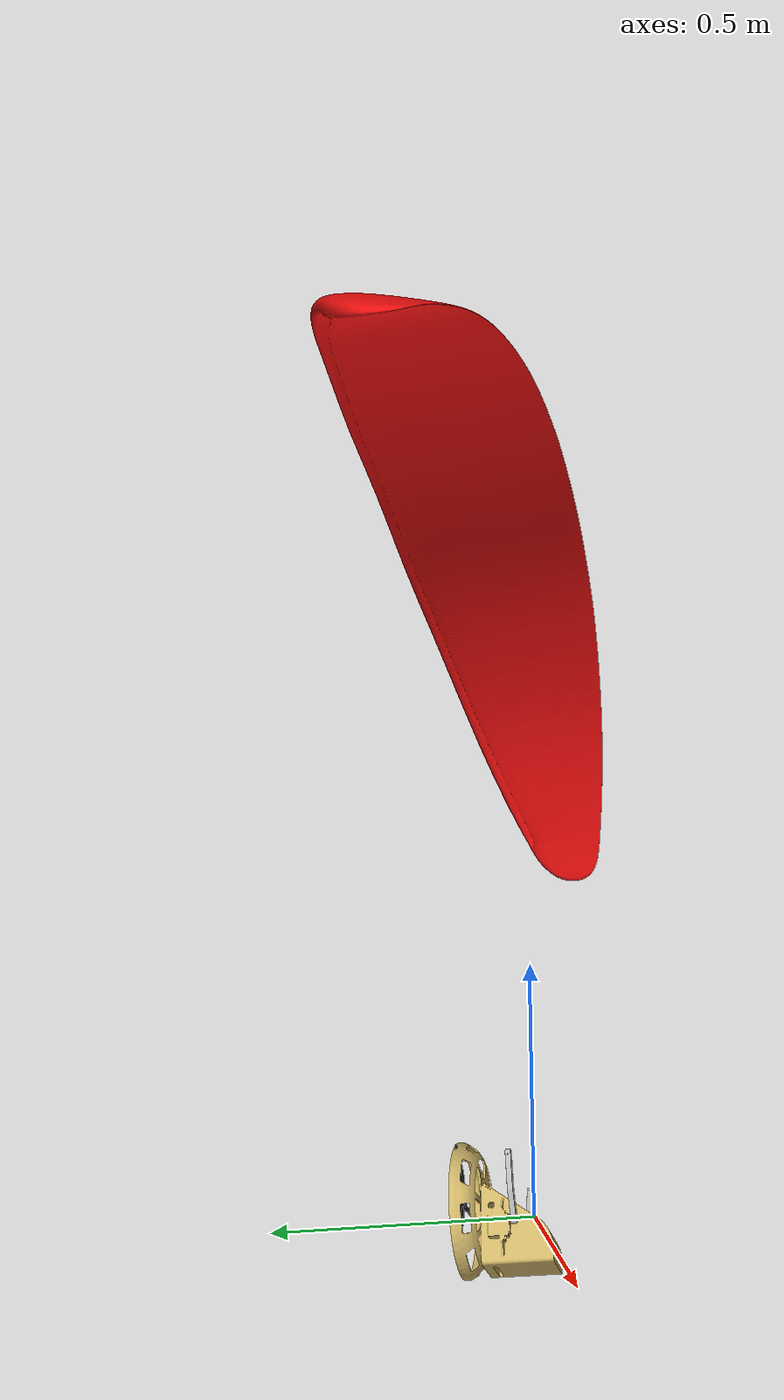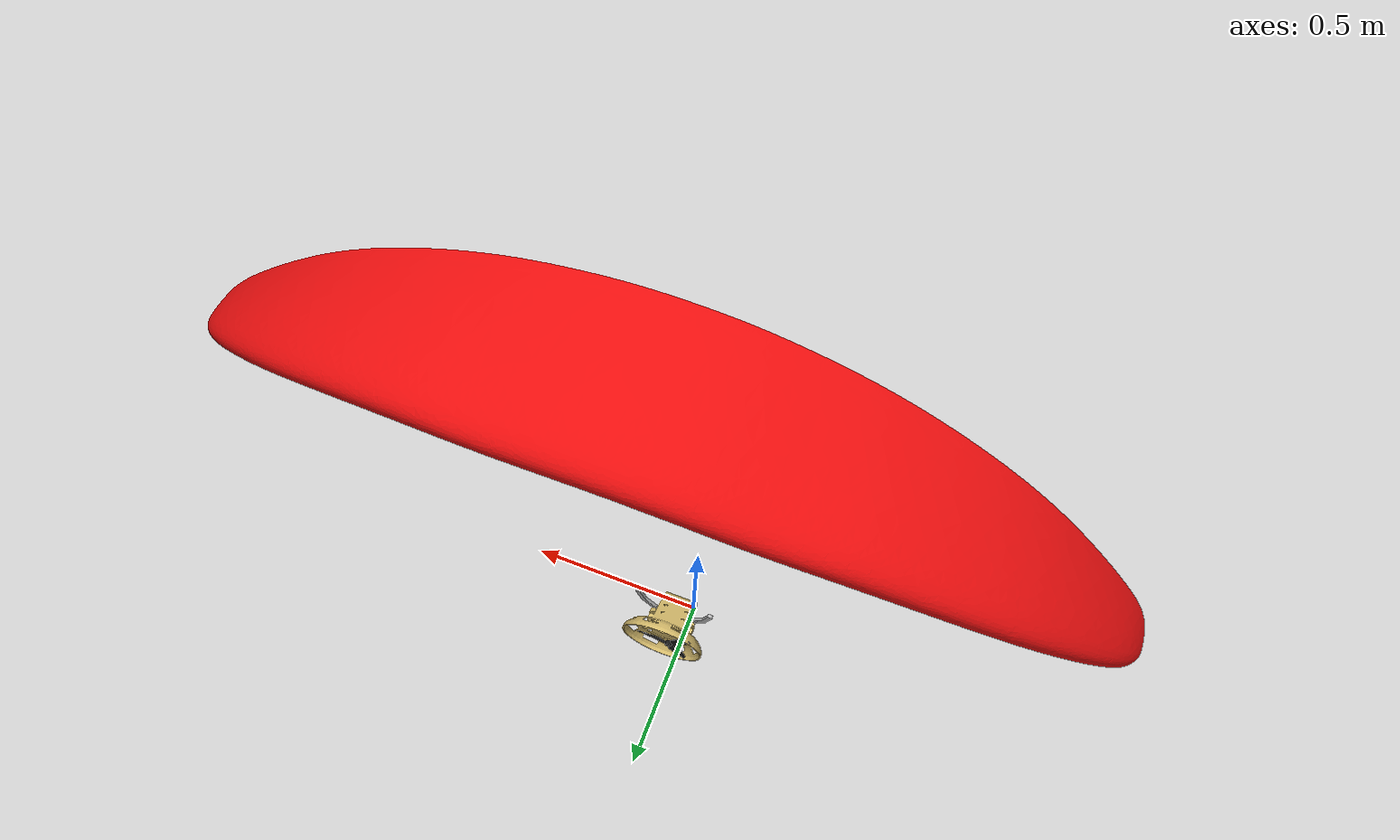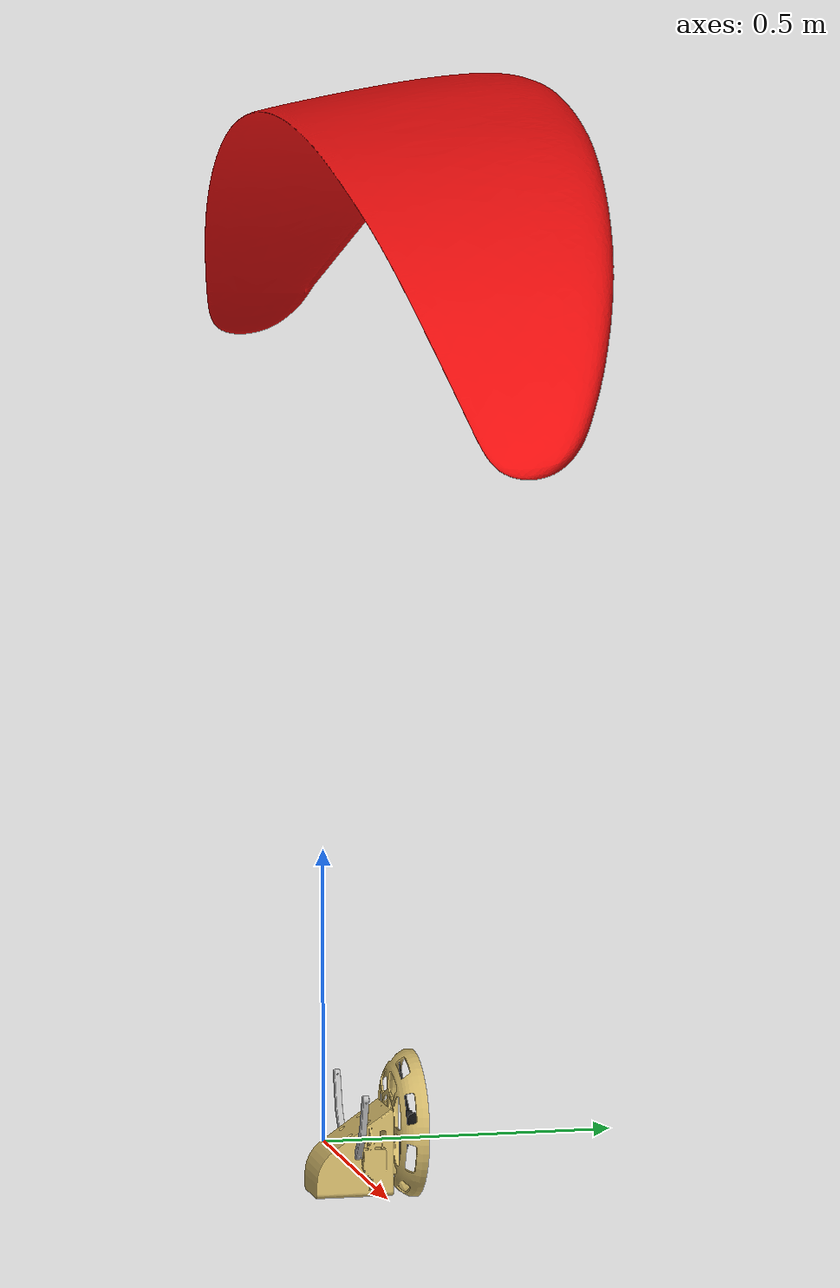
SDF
<?xml version="1.0" ?>
<sdf version="1.10">
  <model name="paraglider_uav">

    <!-- All meshes exported from assembly.step keeping assembly world coords.
         Scale 0.001 (mm->m). Each link pose=(0,0,0); collision boxes placed to match mesh centers. -->

    <link name="fuselage">
      <pose>0 0 0 0 0 0</pose>
      <velocity_decay><linear>0.0</linear><angular>0.5</angular></velocity_decay>
      <inertial>
        <pose>0.050 0.056 0.010 0 0 0</pose>
        <mass>0.20</mass>
        <inertia><ixx>0.10</ixx><iyy>0.10</iyy><izz>0.10</izz>
          <ixy>0</ixy><ixz>0</ixz><iyz>0</iyz></inertia>
      </inertial>
      <visual name="vis">
        <geometry><mesh><uri>model://paraglider_uav/meshes/fuselage_asm.stl</uri><scale>0.001 0.001 0.001</scale></mesh></geometry>
        <material><diffuse>0.8 0.7 0.4 1</diffuse></material>
      </visual>
      <collision name="col">
        <pose>0.050 0.0585 0.035 0 0 0</pose>
        <geometry><box><size>0.273 0.183 0.273</size></box></geometry>
        <surface>
          <friction><ode><mu>0.1</mu><mu2>0.1</mu2></ode></friction>
          <bounce><restitution_coefficient>0</restitution_coefficient></bounce>
        </surface>
      </collision>
      <sensor name="imu_sensor" type="imu">
        <always_on>1</always_on>
        <update_rate>250</update_rate>
        <imu>
          <angular_velocity>
            <x><noise type="gaussian"><mean>0.0</mean><stddev>2e-4</stddev></noise></x>
            <y><noise type="gaussian"><mean>0.0</mean><stddev>2e-4</stddev></noise></y>
            <z><noise type="gaussian"><mean>0.0</mean><stddev>2e-4</stddev></noise></z>
          </angular_velocity>
          <linear_acceleration>
            <x><noise type="gaussian"><mean>0.0</mean><stddev>1.7e-2</stddev></noise></x>
            <y><noise type="gaussian"><mean>0.0</mean><stddev>1.7e-2</stddev></noise></y>
            <z><noise type="gaussian"><mean>0.0</mean><stddev>1.7e-2</stddev></noise></z>
          </linear_acceleration>
        </imu>
      </sensor>
    </link>

    <!-- arm_left: pivot at servo location ~(-2, 37, 0)mm in assembly. Mesh CoM rel = (-34, 0, 49)mm -->
    <link name="arm_left">
      <pose>-0.002 0.037 0 0 0 0</pose>
      <inertial>
        <pose>-0.034 0 0.049 0 0 0</pose>
        <mass>0.03</mass>
        <inertia><ixx>3e-5</ixx><iyy>3e-5</iyy><izz>3e-5</izz><ixy>0</ixy><ixz>0</ixz><iyz>0</iyz></inertia>
      </inertial>
      <visual name="vis">
        <pose>0.002 -0.037 0 0 0 0</pose>
        <geometry><mesh><uri>model://paraglider_uav/meshes/arm_left_asm.stl</uri><scale>0.001 0.001 0.001</scale></mesh></geometry>
      </visual>
      <collision name="col">
        <pose>-0.034 0 0.049 0 0 0</pose>
        <geometry><box><size>0.068 0.011 0.123</size></box></geometry>
      </collision>
    </link>

    <!-- arm_right: pivot at servo location ~(102, 37, 0)mm in assembly. Mesh CoM rel = (36, 0, 48)mm -->
    <link name="arm_right">
      <pose>0.102 0.037 0 0 0 0</pose>
      <inertial>
        <pose>0.036 0 0.048 0 0 0</pose>
        <mass>0.03</mass>
        <inertia><ixx>3e-5</ixx><iyy>3e-5</iyy><izz>3e-5</izz><ixy>0</ixy><ixz>0</ixz><iyz>0</iyz></inertia>
      </inertial>
      <visual name="vis">
        <pose>-0.102 -0.037 0 0 0 0</pose>
        <geometry><mesh><uri>model://paraglider_uav/meshes/arm_right_asm.stl</uri><scale>0.001 0.001 0.001</scale></mesh></geometry>
      </visual>
      <collision name="col">
        <pose>0.036 0 0.048 0 0 0</pose>
        <geometry><box><size>0.073 0.011 0.121</size></box></geometry>
      </collision>
    </link>

    <link name="propeller">
      <pose>0.050 0.13973 0.035 0 0 0</pose>
      <inertial>
        <pose>0 0 0 0 0 0</pose>
        <mass>0.10</mass>
        <inertia><ixx>1e-4</ixx><iyy>1e-4</iyy><izz>2e-4</izz><ixy>0</ixy><ixz>0</ixz><iyz>0</iyz></inertia>
      </inertial>
      <visual name="vis">
        <!-- shift mesh: link world (0.050, 0.13973, 0.035) - mesh hub (0.0735, 0.1398, 0.0305)
                       = (-0.0235, -0.00007, +0.0045). Negate to put mesh hub on link origin. -->
        <pose>-0.0735 -0.1398 -0.0305 0 0 0</pose>
        <geometry><mesh><uri>model://paraglider_uav/meshes/propeller_asm.stl</uri><scale>0.001 0.001 0.001</scale></mesh></geometry>
        <material><diffuse>0.1 0.1 0.1 1</diffuse></material>
      </visual>
      <!-- Cylinder default axis = Z; rotate 90deg around X so cylinder axis aligns with prop spin axis Y -->
      <collision name="col">
        <pose>0 0 0 1.5708 0 0</pose>
        <geometry><cylinder><radius>0.10</radius><length>0.02</length></cylinder></geometry>
      </collision>
    </link>

    <link name="canopy">
      <pose>0 0 0 0 0 0</pose>
      <gravity>false</gravity>
      <inertial>
        <!-- Negligible mass at body level: canopy as visual only, no inertia coupling -->
        <pose>0.076 0.131 0.100 0 0 0</pose>
        <mass>0.02</mass>
        <inertia><ixx>0.001</ixx><iyy>0.001</iyy><izz>0.001</izz>
          <ixy>0</ixy><ixz>0</ixz><iyz>0</iyz></inertia>
      </inertial>
      <visual name="vis">
        <geometry><mesh><uri>model://paraglider_uav/meshes/canopy_asm.stl</uri><scale>0.001 0.001 0.001</scale></mesh></geometry>
        <material><diffuse>0.9 0.05 0.05 1</diffuse></material>
      </visual>
    </link>

    <!-- Joints. Prop spins around Y axis (assembly forward/back).
         Forward direction in assembly = -Y (arms forward at Y=37, prop back at Y=140). -->
    <!-- Arm joints: pull-only (0=released, +0.6 rad=full pull). Effort+damping tuned. -->
    <!-- Left arm axis (0,-1,0): pull command rotates arm tip from +Z (up) toward DOWN. -->
    <joint name="arm_left_joint" type="revolute">
      <parent>fuselage</parent><child>arm_left</child>
      <axis><xyz>0 -1 0</xyz>
        <limit><lower>0</lower><upper>0.6</upper><effort>10</effort><velocity>3</velocity></limit>
        <dynamics><damping>1.0</damping></dynamics>
      </axis>
    </joint>

    <!-- Right arm axis (0,1,0): pull rotates tip from +Z toward DOWN (verified by tip math).
         Mirror axis vs left arm because tip CoM offset has opposite X sign. -->
    <joint name="arm_right_joint" type="revolute">
      <parent>fuselage</parent><child>arm_right</child>
      <axis><xyz>0 1 0</xyz>
        <limit><lower>0</lower><upper>0.6</upper><effort>10</effort><velocity>3</velocity></limit>
        <dynamics><damping>1.0</damping></dynamics>
      </axis>
    </joint>

    <!-- Prop joint axis (0,1,0): plugin applies force OPPOSITE axis (-axis convention) on prop.
         Air pushed +Y (out the back of cage), reaction pushes vehicle -Y (FORWARD). -->
    <joint name="propeller_joint" type="revolute">
      <parent>fuselage</parent><child>propeller</child>
      <axis><xyz>0 1 0</xyz>
        <dynamics><damping>0.005</damping></dynamics>
      </axis>
    </joint>

    <!-- Riser: FIXED joint — canopy is purely visual while bridge applies forces directly to fuselage. -->
    <joint name="riser_joint" type="fixed">
      <parent>fuselage</parent><child>canopy</child>
    </joint>

    <!-- Aerodynamics: LiftDrag panels DISABLED. Bridge applies explicit forces+torques. -->
    -->

    <plugin filename="gz-sim-multicopter-motor-model-system" name="gz::sim::systems::MulticopterMotorModel">
      <robotNamespace>paraglider_uav</robotNamespace>
      <jointName>propeller_joint</jointName>
      <linkName>propeller</linkName>
      <turningDirection>cw</turningDirection>
      <timeConstantUp>0.05</timeConstantUp>
      <timeConstantDown>0.05</timeConstantDown>
      <maxRotVelocity>1500</maxRotVelocity>
      <motorConstant>0.0</motorConstant>
      <momentConstant>0.0</momentConstant>
      <commandSubTopic>command/motor_speed</commandSubTopic>
      <motorNumber>0</motorNumber>
      <rotorDragCoefficient>0</rotorDragCoefficient>
      <rollingMomentCoefficient>0</rollingMomentCoefficient>
      <motorSpeedPubTopic>motor_speed/0</motorSpeedPubTopic>
      <rotorVelocitySlowdownSim>1</rotorVelocitySlowdownSim>
    </plugin>

    <plugin filename="gz-sim-joint-position-controller-system" name="gz::sim::systems::JointPositionController">
      <joint_name>arm_left_joint</joint_name>
      <p_gain>5</p_gain><i_gain>0</i_gain><d_gain>0.5</d_gain>
      <topic>arm/left</topic>
    </plugin>
    <plugin filename="gz-sim-joint-position-controller-system" name="gz::sim::systems::JointPositionController">
      <joint_name>arm_right_joint</joint_name>
      <p_gain>5</p_gain><i_gain>0</i_gain><d_gain>0.5</d_gain>
      <topic>arm/right</topic>
    </plugin>

    <plugin filename="gz-sim-imu-system" name="gz::sim::systems::Imu"/>
    <plugin filename="gz-sim-navsat-system" name="gz::sim::systems::NavSat"/>

  </model>
</sdf>
